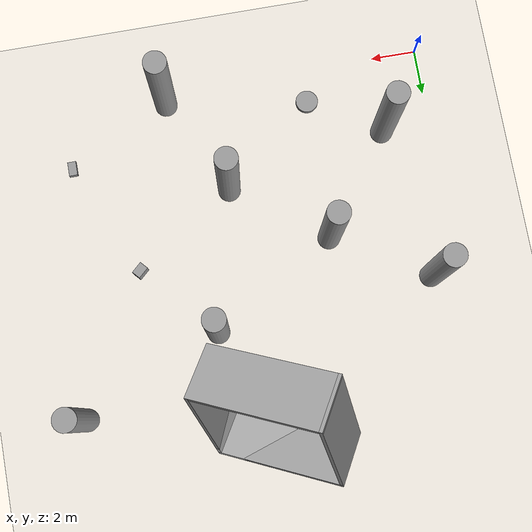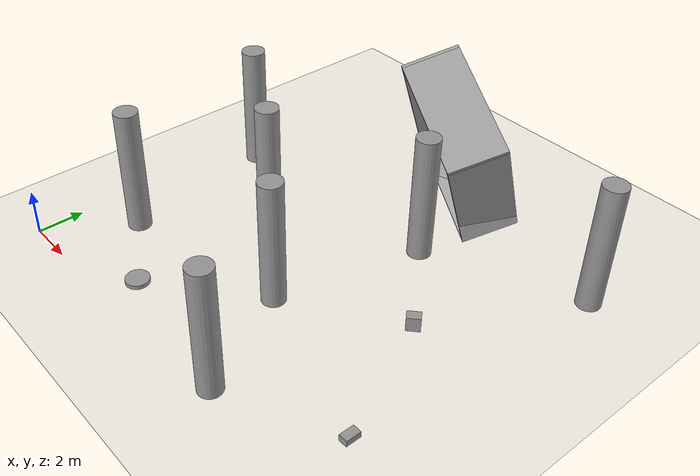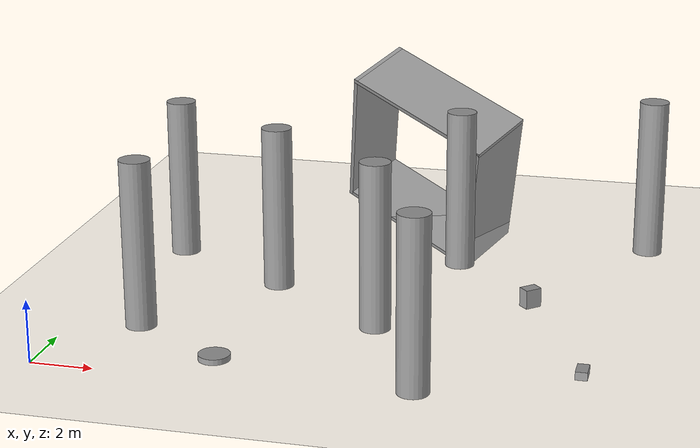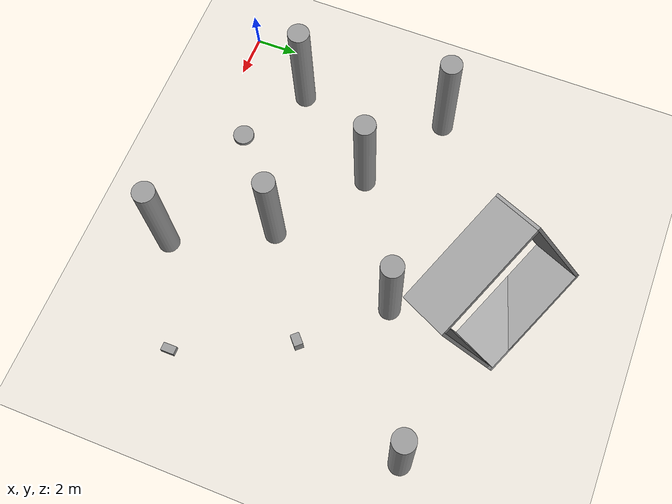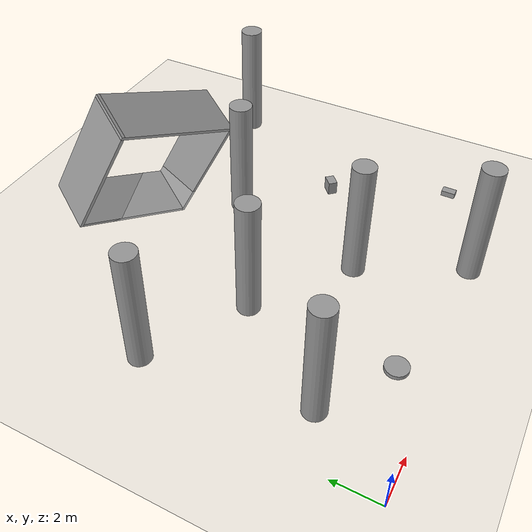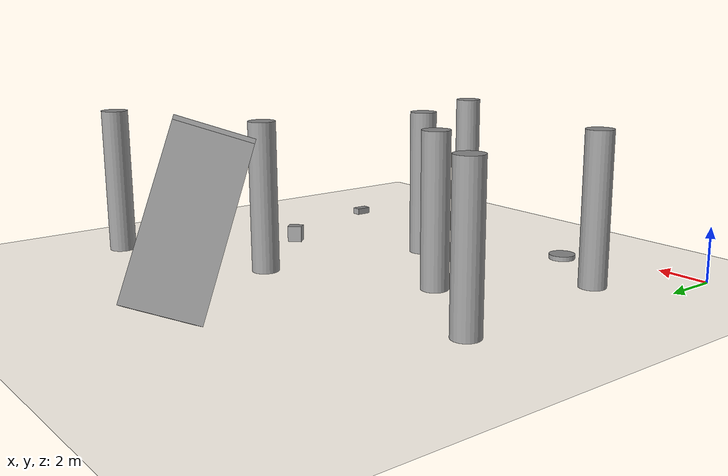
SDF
<sdf version="1.6">
 <world name="default">
  <model name="ground_plane">
   <static>1</static>
   <link name="link">
    <collision name="collision">
     <geometry><plane><normal>0 0 1</normal><size>100 100</size></plane></geometry>
     <surface><friction><ode><mu>100</mu><mu2>50</mu2></ode></friction></surface>
    </collision>
    <visual name="visual">
     <cast_shadows>0</cast_shadows>
     <geometry><plane><normal>0 0 1</normal><size>100 100</size></plane></geometry>
     <material>
      <script><uri>file://media/materials/scripts/gazebo.material</uri><name>Gazebo/Grey</name></script>
     </material>
    </visual>
   </link>
  </model>
  <model name="unit_cylinder">
   <pose>5.3177 1.52841 0.090816 0 -0 0.001729</pose>
   <link name="link">
    <inertial>
     <mass>1</mass>
     <inertia><ixx>0.145833</ixx><ixy>0</ixy><ixz>0</ixz><iyy>0.145833</iyy><iyz>0</iyz><izz>0.125</izz></inertia>
    </inertial>
    <collision name="collision">
     <geometry><cylinder><radius>0.5</radius><length>0.18165</length></cylinder></geometry>
    </collision>
    <visual name="visual">
     <geometry><cylinder><radius>0.5</radius><length>0.18165</length></cylinder></geometry>
     <material>
      <script><name>Gazebo/Grey</name><uri>file://media/materials/scripts/gazebo.material</uri></script>
     </material>
    </visual>
   </link>
  </model>
  <model name="unit_cylinder_clone_0">
   <pose>2.2289 3.50843 2.75253 0 -0 0.001954</pose>
   <link name="link">
    <inertial>
     <mass>1</mass>
     <inertia><ixx>0.145833</ixx><ixy>0</ixy><ixz>0</ixz><iyy>0.145833</iyy><iyz>0</iyz><izz>0.125</izz></inertia>
    </inertial>
    <collision name="collision">
     <geometry><cylinder><radius>0.5</radius><length>5.50507</length></cylinder></geometry>
    </collision>
    <visual name="visual">
     <geometry><cylinder><radius>0.5</radius><length>5.50507</length></cylinder></geometry>
     <material>
      <script><name>Gazebo/Grey</name><uri>file://media/materials/scripts/gazebo.material</uri></script>
     </material>
    </visual>
   </link>
  </model>
  <model name="unit_cylinder_clone_2">
   <pose>9.49523 5.00015 2.75253 0 -0 0.001938</pose>
   <link name="link">
    <inertial>
     <mass>1</mass>
     <inertia><ixx>0.145833</ixx><ixy>0</ixy><ixz>0</ixz><iyy>0.145833</iyy><iyz>0</iyz><izz>0.125</izz></inertia>
    </inertial>
    <collision name="collision">
     <geometry><cylinder><radius>0.5</radius><length>5.50507</length></cylinder></geometry>
    </collision>
    <visual name="visual">
     <geometry><cylinder><radius>0.5</radius><length>5.50507</length></cylinder></geometry>
     <material>
      <script><name>Gazebo/Grey</name><uri>file://media/materials/scripts/gazebo.material</uri></script>
     </material>
    </visual>
   </link>
  </model>
  <model name="unit_cylinder_clone_5">
   <pose>5.48344 7.91906 2.75253 0 -0 0.001767</pose>
   <link name="link">
    <inertial>
     <mass>1</mass>
     <inertia><ixx>0.145833</ixx><ixy>0</ixy><ixz>0</ixz><iyy>0.145833</iyy><iyz>0</iyz><izz>0.125</izz></inertia>
    </inertial>
    <collision name="collision">
     <geometry><cylinder><radius>0.5</radius><length>5.50507</length></cylinder></geometry>
    </collision>
    <visual name="visual">
     <geometry><cylinder><radius>0.5</radius><length>5.50507</length></cylinder></geometry>
     <material>
      <script><name>Gazebo/Grey</name><uri>file://media/materials/scripts/gazebo.material</uri></script>
     </material>
    </visual>
   </link>
  </model>
  <model name="unit_cylinder_clone_7">
   <pose>11.6656 0.575117 2.75253 0 -0 0.001925</pose>
   <link name="link">
    <inertial>
     <mass>1</mass>
     <inertia><ixx>0.145833</ixx><ixy>0</ixy><ixz>0</ixz><iyy>0.145833</iyy><iyz>0</iyz><izz>0.125</izz></inertia>
    </inertial>
    <collision name="collision">
     <geometry><cylinder><radius>0.5</radius><length>5.50507</length></cylinder></geometry>
    </collision>
    <visual name="visual">
     <geometry><cylinder><radius>0.5</radius><length>5.50507</length></cylinder></geometry>
     <material>
      <script><name>Gazebo/Grey</name><uri>file://media/materials/scripts/gazebo.material</uri></script>
     </material>
    </visual>
   </link>
  </model>
  <model name="unit_cylinder_clone_8">
   <pose>11.0404 11.2507 2.75253 0 -0 0.001856</pose>
   <link name="link">
    <inertial>
     <mass>1</mass>
     <inertia><ixx>0.145833</ixx><ixy>0</ixy><ixz>0</ixz><iyy>0.145833</iyy><iyz>0</iyz><izz>0.125</izz></inertia>
    </inertial>
    <collision name="collision">
     <geometry><cylinder><radius>0.5</radius><length>5.50507</length></cylinder></geometry>
    </collision>
    <visual name="visual">
     <geometry><cylinder><radius>0.5</radius><length>5.50507</length></cylinder></geometry>
     <material>
      <script><name>Gazebo/Grey</name><uri>file://media/materials/scripts/gazebo.material</uri></script>
     </material>
    </visual>
   </link>
  </model>
  <model name="unit_cylinder_clone_9">
   <pose>1.32565 10.3756 2.75253 0 -0 0.002036</pose>
   <link name="link">
    <inertial>
     <mass>1</mass>
     <inertia><ixx>0.145833</ixx><ixy>0</ixy><ixz>0</ixz><iyy>0.145833</iyy><iyz>0</iyz><izz>0.125</izz></inertia>
    </inertial>
    <collision name="collision">
     <geometry><cylinder><radius>0.5</radius><length>5.50507</length></cylinder></geometry>
    </collision>
    <visual name="visual">
     <geometry><cylinder><radius>0.5</radius><length>5.50507</length></cylinder></geometry>
     <material>
      <script><name>Gazebo/Grey</name><uri>file://media/materials/scripts/gazebo.material</uri></script>
     </material>
    </visual>
   </link>
  </model>
  <model name="unit_box">
   <pose>13.9889 7.9962 0.317164 0 -0 0.738864</pose>
   <link name="link">
    <inertial>
     <mass>1</mass>
     <inertia>
      <ixx>0.166667</ixx>
      <ixy>0</ixy>
      <ixz>0</ixz>
      <iyy>0.166667</iyy>
      <iyz>0</iyz>
      <izz>0.166667</izz>
     </inertia>
    </inertial>
    <collision name="collision">
     <geometry><box><size>0.564982 0.408969 0.634329</size></box></geometry>
    </collision>
    <visual name="visual">
     <geometry><box><size>0.564982 0.408969 0.634329</size></box></geometry>
     <material>
      <script><name>Gazebo/Grey</name><uri>file://media/materials/scripts/gazebo.material</uri></script>
     </material>
    </visual>
   </link>
  </model>
  <model name="unit_box_0">
   <pose>16.3006 2.8364 0.132103 -0 -7e-06 -0.000455</pose>
   <link name="link">
    <inertial>
     <mass>1</mass>
     <inertia>
      <ixx>0.166667</ixx>
      <ixy>0</ixy>
      <ixz>0</ixz>
      <iyy>0.166667</iyy>
      <iyz>0</iyz>
      <izz>0.166667</izz>
     </inertia>
    </inertial>
    <collision name="collision">
     <geometry><box><size>0.372249 0.631413 0.264209</size></box></geometry>
    </collision>
    <visual name="visual">
     <geometry><box><size>0.372249 0.631413 0.264209</size></box></geometry>
     <material>
      <script><name>Gazebo/Grey</name><uri>file://media/materials/scripts/gazebo.material</uri></script>
     </material>
    </visual>
   </link>
  </model>
  <model name="unit_cylinder_clone_7_clone_2">
   <pose>17.2812 14.0464 2.75253 0 -0 0.001804</pose>
   <link name="link">
    <inertial>
     <mass>1</mass>
     <inertia><ixx>0.145833</ixx><ixy>0</ixy><ixz>0</ixz><iyy>0.145833</iyy><iyz>0</iyz><izz>0.125</izz></inertia>
    </inertial>
    <collision name="collision">
     <geometry><cylinder><radius>0.5</radius><length>5.50507</length></cylinder></geometry>
    </collision>
    <visual name="visual">
     <geometry><cylinder><radius>0.5</radius><length>5.50507</length></cylinder></geometry>
     <material>
      <script><name>Gazebo/Grey</name><uri>file://media/materials/scripts/gazebo.material</uri></script>
     </material>
    </visual>
   </link>
  </model>
  <model name="vRoom_clone_3_clone_clone_9_clone_clone_clone">
   <link name="Wall_0">
    <pose>-2.8 -0 -1e-06 -0 -0 -1.5708</pose>
    <velocity_decay><linear>0</linear><angular>0</angular></velocity_decay>
    <visual name="Wall_0_Visual">
     <pose>0 0 1.25 0 -0 0</pose>
     <geometry><box><size>5.75 0.15 2.5</size></box></geometry>
     <material>
      <script><uri>file://media/materials/scripts/gazebo.material</uri><name>Gazebo/Grey</name></script>
      <ambient>1 1 1 1</ambient>
     </material>
    </visual>
    <collision name="Wall_0_Collision">
     <pose>0 0 1.25 0 -0 0</pose>
     <geometry><box><size>5.75 0.15 2.5</size></box></geometry>
     <surface>
      <friction>
       <ode><mu>1</mu><mu2>1</mu2><fdir1>0 0 0</fdir1><slip1>0</slip1><slip2>0</slip2></ode>
       <torsional>
        <coefficient>1</coefficient>
        <patch_radius>0</patch_radius>
        <surface_radius>0</surface_radius>
        <use_patch_radius>1</use_patch_radius>
        <ode><slip>0</slip></ode>
       </torsional>
      </friction>
      <bounce><restitution_coefficient>0</restitution_coefficient><threshold>1e+06</threshold></bounce>
      <contact>
       <collide_without_contact>0</collide_without_contact>
       <collide_without_contact_bitmask>1</collide_without_contact_bitmask>
       <collide_bitmask>1</collide_bitmask>
       <ode>
        <soft_cfm>0</soft_cfm>
        <soft_erp>0.2</soft_erp>
        <kp>1e+13</kp>
        <kd>1</kd>
        <max_vel>0.01</max_vel>
        <min_depth>0</min_depth>
       </ode>
       <bullet>
        <split_impulse>1</split_impulse>
        <split_impulse_penetration_threshold>-0.01</split_impulse_penetration_threshold>
        <soft_cfm>0</soft_cfm>
        <soft_erp>0.2</soft_erp>
        <kp>1e+13</kp>
        <kd>1</kd>
       </bullet>
      </contact>
     </surface>
    </collision>
   </link>
   <link name="Wall_1">
    <pose>2e-06 -2.8 2e-06 0 -0 0</pose>
    <velocity_decay><linear>0</linear><angular>0</angular></velocity_decay>
    <visual name="Wall_1_Visual">
     <pose>0 0 1.25 0 -0 0</pose>
     <geometry><box><size>5.75 0.15 2.5</size></box></geometry>
     <material>
      <script><uri>file://media/materials/scripts/gazebo.material</uri><name>Gazebo/Grey</name></script>
      <ambient>1 1 1 1</ambient>
     </material>
    </visual>
    <collision name="Wall_1_Collision">
     <pose>0 0 1.25 0 -0 0</pose>
     <geometry><box><size>5.75 0.15 2.5</size></box></geometry>
     <surface>
      <friction>
       <ode><mu>1</mu><mu2>1</mu2><fdir1>0 0 0</fdir1><slip1>0</slip1><slip2>0</slip2></ode>
       <torsional>
        <coefficient>1</coefficient>
        <patch_radius>0</patch_radius>
        <surface_radius>0</surface_radius>
        <use_patch_radius>1</use_patch_radius>
        <ode><slip>0</slip></ode>
       </torsional>
      </friction>
      <bounce><restitution_coefficient>0</restitution_coefficient><threshold>1e+06</threshold></bounce>
      <contact>
       <collide_without_contact>0</collide_without_contact>
       <collide_without_contact_bitmask>1</collide_without_contact_bitmask>
       <collide_bitmask>1</collide_bitmask>
       <ode>
        <soft_cfm>0</soft_cfm>
        <soft_erp>0.2</soft_erp>
        <kp>1e+13</kp>
        <kd>1</kd>
        <max_vel>0.01</max_vel>
        <min_depth>0</min_depth>
       </ode>
       <bullet>
        <split_impulse>1</split_impulse>
        <split_impulse_penetration_threshold>-0.01</split_impulse_penetration_threshold>
        <soft_cfm>0</soft_cfm>
        <soft_erp>0.2</soft_erp>
        <kp>1e+13</kp>
        <kd>1</kd>
       </bullet>
      </contact>
     </surface>
    </collision>
   </link>
   <link name="Wall_2">
    <pose>2.8 0 1e-06 0 -0 1.5708</pose>
    <velocity_decay><linear>0</linear><angular>0</angular></velocity_decay>
    <visual name="Wall_2_Visual">
     <pose>0 0 1.25 0 -0 0</pose>
     <geometry><box><size>5.75 0.15 2.5</size></box></geometry>
     <material>
      <script><uri>file://media/materials/scripts/gazebo.material</uri><name>Gazebo/Grey</name></script>
      <ambient>1 1 1 1</ambient>
     </material>
    </visual>
    <collision name="Wall_2_Collision">
     <pose>0 0 1.25 0 -0 0</pose>
     <geometry><box><size>5.75 0.15 2.5</size></box></geometry>
     <surface>
      <friction>
       <ode><mu>1</mu><mu2>1</mu2><fdir1>0 0 0</fdir1><slip1>0</slip1><slip2>0</slip2></ode>
       <torsional>
        <coefficient>1</coefficient>
        <patch_radius>0</patch_radius>
        <surface_radius>0</surface_radius>
        <use_patch_radius>1</use_patch_radius>
        <ode><slip>0</slip></ode>
       </torsional>
      </friction>
      <bounce><restitution_coefficient>0</restitution_coefficient><threshold>1e+06</threshold></bounce>
      <contact>
       <collide_without_contact>0</collide_without_contact>
       <collide_without_contact_bitmask>1</collide_without_contact_bitmask>
       <collide_bitmask>1</collide_bitmask>
       <ode>
        <soft_cfm>0</soft_cfm>
        <soft_erp>0.2</soft_erp>
        <kp>1e+13</kp>
        <kd>1</kd>
        <max_vel>0.01</max_vel>
        <min_depth>0</min_depth>
       </ode>
       <bullet>
        <split_impulse>1</split_impulse>
        <split_impulse_penetration_threshold>-0.01</split_impulse_penetration_threshold>
        <soft_cfm>0</soft_cfm>
        <soft_erp>0.2</soft_erp>
        <kp>1e+13</kp>
        <kd>1</kd>
       </bullet>
      </contact>
     </surface>
    </collision>
   </link>
   <link name="Wall_3">
    <pose>-2e-06 2.8 -2e-06 0 -0 3.14159</pose>
    <velocity_decay><linear>0</linear><angular>0</angular></velocity_decay>
    <visual name="Wall_3_Visual">
     <pose>0 0 1.25 0 -0 0</pose>
     <geometry><box><size>5.75 0.15 2.5</size></box></geometry>
     <material>
      <script><uri>file://media/materials/scripts/gazebo.material</uri><name>Gazebo/Grey</name></script>
      <ambient>1 1 1 1</ambient>
     </material>
    </visual>
    <collision name="Wall_3_Collision">
     <pose>0 0 1.25 0 -0 0</pose>
     <geometry><box><size>5.75 0.15 2.5</size></box></geometry>
     <surface>
      <friction>
       <ode><mu>1</mu><mu2>1</mu2><fdir1>0 0 0</fdir1><slip1>0</slip1><slip2>0</slip2></ode>
       <torsional>
        <coefficient>1</coefficient>
        <patch_radius>0</patch_radius>
        <surface_radius>0</surface_radius>
        <use_patch_radius>1</use_patch_radius>
        <ode><slip>0</slip></ode>
       </torsional>
      </friction>
      <bounce><restitution_coefficient>0</restitution_coefficient><threshold>1e+06</threshold></bounce>
      <contact>
       <collide_without_contact>0</collide_without_contact>
       <collide_without_contact_bitmask>1</collide_without_contact_bitmask>
       <collide_bitmask>1</collide_bitmask>
       <ode>
        <soft_cfm>0</soft_cfm>
        <soft_erp>0.2</soft_erp>
        <kp>1e+13</kp>
        <kd>1</kd>
        <max_vel>0.01</max_vel>
        <min_depth>0</min_depth>
       </ode>
       <bullet>
        <split_impulse>1</split_impulse>
        <split_impulse_penetration_threshold>-0.01</split_impulse_penetration_threshold>
        <soft_cfm>0</soft_cfm>
        <soft_erp>0.2</soft_erp>
        <kp>1e+13</kp>
        <kd>1</kd>
       </bullet>
      </contact>
     </surface>
    </collision>
   </link>
   <static>1</static>
   <pose>8.63913 14.2744 2.16038 1.23249 -0.326147 2.72159</pose>
  </model>
 </world>
</sdf>
